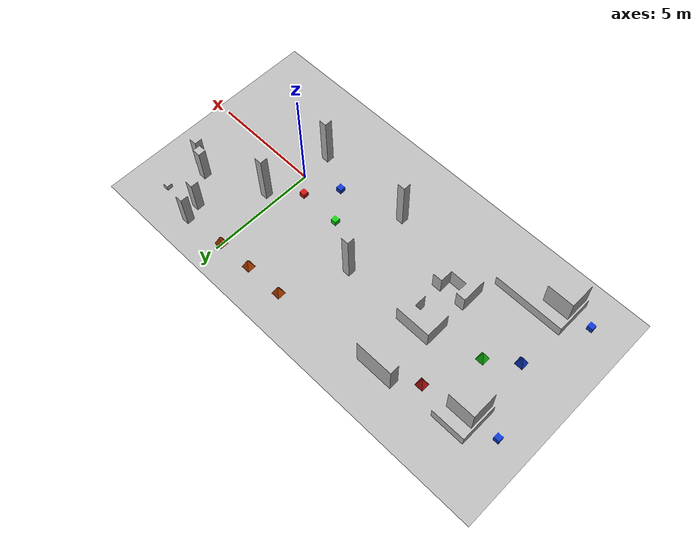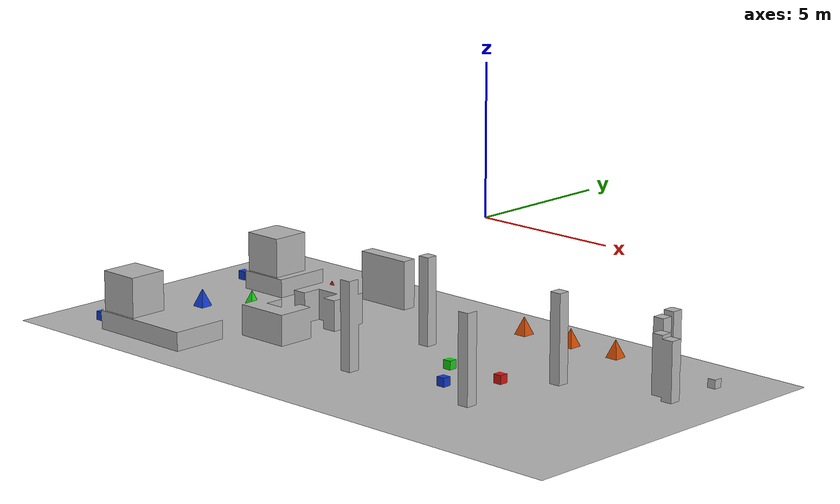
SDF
<?xml version="1.0" ?>
<sdf version="1.6">
    <model name="italy_obj">
        <pose>0 0 -4.8 0 0 0</pose>
        <static>true</static>
        <link name="link">
            <collision name="collision">
                <geometry>
                    <mesh>
                        <uri>italy_obj/Italy.stl</uri>
                        <scale>1 1 1</scale>
                    </mesh>
                </geometry>
            </collision>
            <visual name="visual">
                <geometry>
                    <mesh>
                        <uri>italy_obj/Italy.dae</uri>
                        <scale>1 1 1</scale>
                    </mesh>
                </geometry>
            </visual>
        </link>
    </model>
</sdf>
